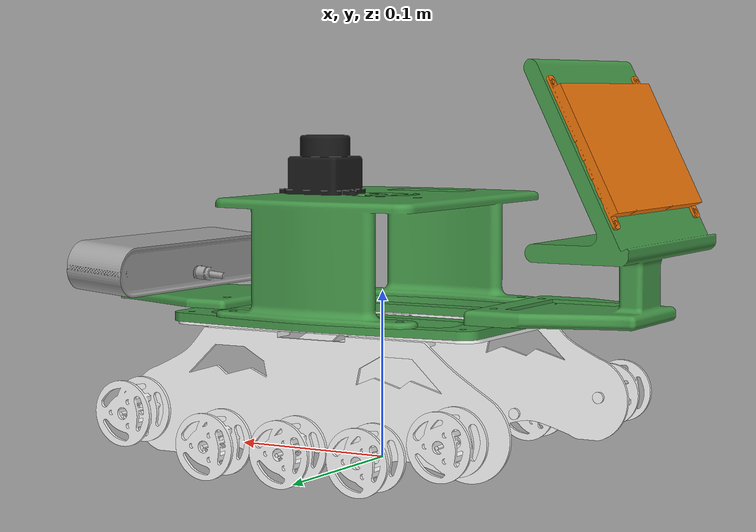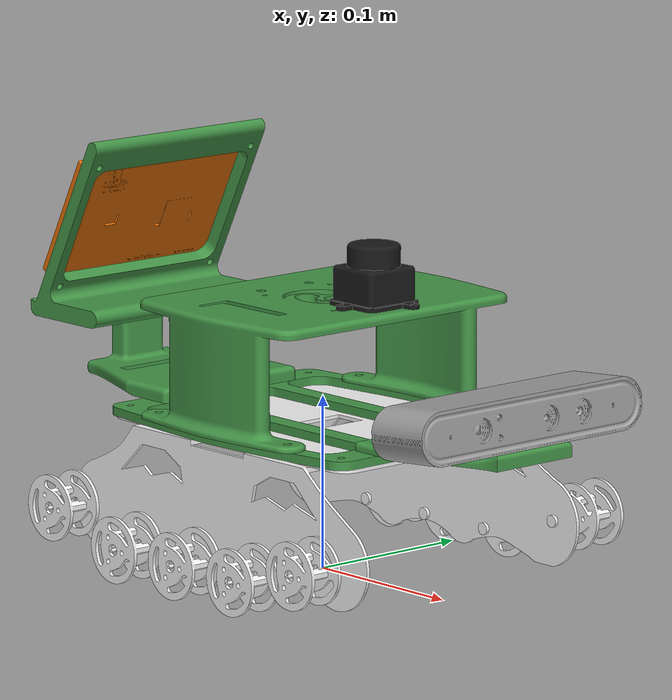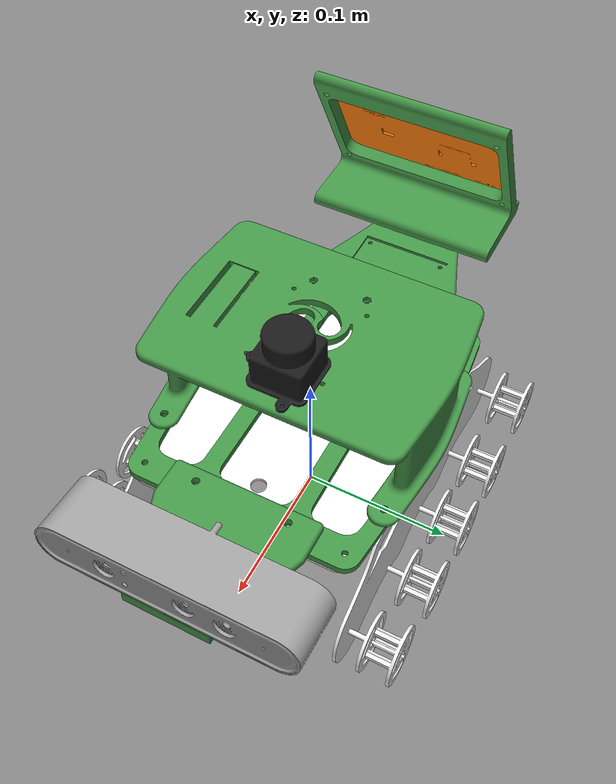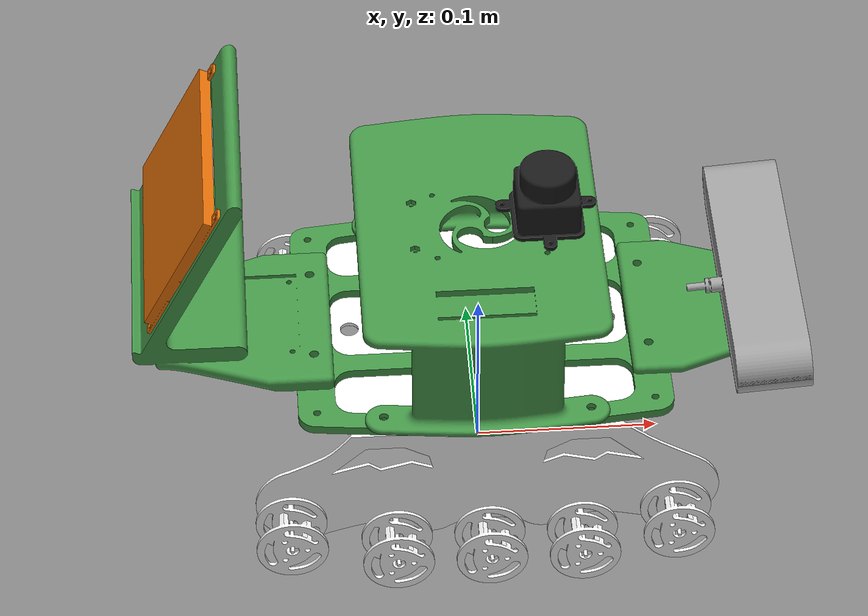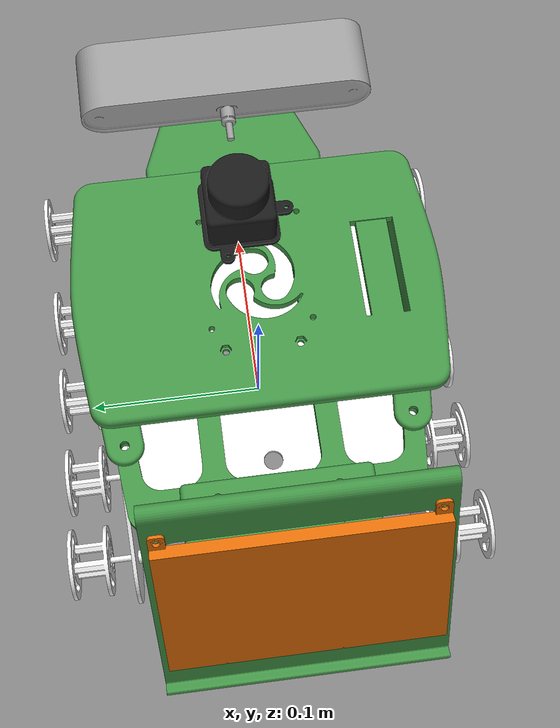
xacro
<?xml version="1.0" ?>
<robot name="robocop" xmlns:xacro="http://www.ros.org/wiki/xacro">

<xacro:include filename="$(find robocop_description)/urdf/materials.xacro" />
<xacro:include filename="$(find robocop_description)/urdf/robocop.trans" />

<xacro:include filename="$(find robocop_description)/gazebo/robocop_materials.gazebo" />
<xacro:include filename="$(find robocop_description)/gazebo/robocop_physics.gazebo" />
<xacro:include filename="$(find robocop_description)/gazebo/robocop_plugins.gazebo" />

<link name="base_link">
  <inertial>
    <origin xyz="-0.00015252878117210557 0.0011495201398277505 0.08695702362938718" rpy="0 0 0"/>
    <mass value="0.5188659614992409"/>
    <inertia ixx="0.001389" iyy="0.002526" izz="0.003913" ixy="0.0" iyz="0.0" ixz="0.0"/>
  </inertial>
  <visual>
    <origin xyz="0 0 0" rpy="0 0 0"/>
    <geometry>
      <mesh filename="package://robocop_description/meshes/base_link.stl" scale="0.001 0.001 0.001"/>
    </geometry>
    <material name="plstico_mate_verde"/>
  </visual>
  <collision>
    <origin xyz="0 0 0" rpy="0 0 0"/>
    <geometry>
      <mesh filename="package://robocop_description/meshes/base_link.stl" scale="0.001 0.001 0.001"/>
    </geometry>
  </collision>
</link>

<link name="soporteCamara_v2_1">
  <inertial>
    <origin xyz="0.033096700645355887 -0.031000479859321393 0.0028238611176841927" rpy="0 0 0"/>
    <mass value="0.30666683235154446"/>
    <inertia ixx="0.000189" iyy="0.000213" izz="0.0004" ixy="-0.0" iyz="-0.0" ixz="-4e-06"/>
  </inertial>
  <visual>
    <origin xyz="-0.089845 -0.03215 -0.089446" rpy="0 0 0"/>
    <geometry>
      <mesh filename="package://robocop_description/meshes/soporteCamara_v2_1.stl" scale="0.001 0.001 0.001"/>
    </geometry>
    <material name="plstico_mate_verde"/>
  </visual>
  <collision>
    <origin xyz="-0.089845 -0.03215 -0.089446" rpy="0 0 0"/>
    <geometry>
      <mesh filename="package://robocop_description/meshes/soporteCamara_v2_1.stl" scale="0.001 0.001 0.001"/>
    </geometry>
  </collision>
</link>

<link name="depthCamera_v1_1">
  <inertial>
    <origin xyz="-0.006184113912021172 -1.3611701263174228e-05 0.014463487875515435" rpy="0 0 0"/>
    <mass value="1.4328263704058224"/>
    <inertia ixx="0.003111" iyy="0.000283" izz="0.00318" ixy="0.0" iyz="0.0" ixz="-5e-06"/>
  </inertial>
  <visual>
    <origin xyz="-0.157196 -0.00115 -0.097274" rpy="0 0 0"/>
    <geometry>
      <mesh filename="package://robocop_description/meshes/depthCamera_v1_1.stl" scale="0.001 0.001 0.001"/>
    </geometry>
    <material name="acero_satinado"/>
  </visual>
  <collision>
    <origin xyz="-0.157196 -0.00115 -0.097274" rpy="0 0 0"/>
    <geometry>
      <mesh filename="package://robocop_description/meshes/depthCamera_v1_1.stl" scale="0.001 0.001 0.001"/>
    </geometry>
  </collision>
</link>

<link name="soporteElectronica_v7_1">
  <inertial>
    <origin xyz="0.0550026777716467 -0.0750539566858314 0.04613612305196782" rpy="0 0 0"/>
    <mass value="1.7280541618979188"/>
    <inertia ixx="0.008802" iyy="0.002669" izz="0.009606" ixy="-0.0" iyz="-2.2e-05" ixz="-0.0"/>
  </inertial>
  <visual>
    <origin xyz="0.055155 -0.07685 -0.089446" rpy="0 0 0"/>
    <geometry>
      <mesh filename="package://robocop_description/meshes/soporteElectronica_v7_1.stl" scale="0.001 0.001 0.001"/>
    </geometry>
    <material name="plstico_mate_verde"/>
  </visual>
  <collision>
    <origin xyz="0.055155 -0.07685 -0.089446" rpy="0 0 0"/>
    <geometry>
      <mesh filename="package://robocop_description/meshes/soporteElectronica_v7_1.stl" scale="0.001 0.001 0.001"/>
    </geometry>
  </collision>
</link>

<link name="basePrincipal_v4_1">
  <inertial>
    <origin xyz="-0.10000015153288912 -4.798601768295652e-07 -0.0009996705328831484" rpy="0 0 0"/>
    <mass value="0.44398234905881495"/>
    <inertia ixx="0.000868" iyy="0.001466" izz="0.002334" ixy="0.0" iyz="0.0" ixz="0.0"/>
  </inertial>
  <visual>
    <origin xyz="-0.099845 -0.00115 -0.084446" rpy="0 0 0"/>
    <geometry>
      <mesh filename="package://robocop_description/meshes/basePrincipal_v4_1.stl" scale="0.001 0.001 0.001"/>
    </geometry>
    <material name="aluminio_pulido"/>
  </visual>
  <collision>
    <origin xyz="-0.099845 -0.00115 -0.084446" rpy="0 0 0"/>
    <geometry>
      <mesh filename="package://robocop_description/meshes/basePrincipal_v4_1.stl" scale="0.001 0.001 0.001"/>
    </geometry>
  </collision>
</link>

<link name="baseRuedas_v3__1__1">
  <inertial>
    <origin xyz="-0.00016167785566641627 0.002915310120291753 -0.03517812668147839" rpy="0 0 0"/>
    <mass value="0.25465013251117774"/>
    <inertia ixx="0.000128" iyy="0.001194" izz="0.001072" ixy="0.0" iyz="9e-06" ixz="4e-06"/>
  </inertial>
  <visual>
    <origin xyz="0.000155 -0.07615 -0.082446" rpy="0 0 0"/>
    <geometry>
      <mesh filename="package://robocop_description/meshes/baseRuedas_v3__1__1.stl" scale="0.001 0.001 0.001"/>
    </geometry>
    <material name="aluminio_pulido"/>
  </visual>
  <collision>
    <origin xyz="0.000155 -0.07615 -0.082446" rpy="0 0 0"/>
    <geometry>
      <mesh filename="package://robocop_description/meshes/baseRuedas_v3__1__1.stl" scale="0.001 0.001 0.001"/>
    </geometry>
  </collision>
</link>

<link name="baseRuedas_v3_1">
  <inertial>
    <origin xyz="0.0001613747898826616 -0.0029162698406539483 -0.03517812668147681" rpy="0 0 0"/>
    <mass value="0.2546501325111777"/>
    <inertia ixx="0.000128" iyy="0.001194" izz="0.001072" ixy="0.0" iyz="-9e-06" ixz="-4e-06"/>
  </inertial>
  <visual>
    <origin xyz="0.000155 0.07385 -0.082446" rpy="0 0 0"/>
    <geometry>
      <mesh filename="package://robocop_description/meshes/baseRuedas_v3_1.stl" scale="0.001 0.001 0.001"/>
    </geometry>
    <material name="aluminio_pulido"/>
  </visual>
  <collision>
    <origin xyz="0.000155 0.07385 -0.082446" rpy="0 0 0"/>
    <geometry>
      <mesh filename="package://robocop_description/meshes/baseRuedas_v3_1.stl" scale="0.001 0.001 0.001"/>
    </geometry>
  </collision>
</link>

<link name="soportePantalla_v11_1">
  <inertial>
    <origin xyz="-0.05482012321579245 -0.031024327711935747 0.0416932220450911" rpy="0 0 0"/>
    <mass value="1.4723320792485377"/>
    <inertia ixx="0.003919" iyy="0.003175" izz="0.002641" ixy="1e-06" iyz="-1e-06" ixz="0.000192"/>
  </inertial>
  <visual>
    <origin xyz="0.090155 -0.03215 -0.089446" rpy="0 0 0"/>
    <geometry>
      <mesh filename="package://robocop_description/meshes/soportePantalla_v11_1.stl" scale="0.001 0.001 0.001"/>
    </geometry>
    <material name="plstico_mate_verde"/>
  </visual>
  <collision>
    <origin xyz="0.090155 -0.03215 -0.089446" rpy="0 0 0"/>
    <geometry>
      <mesh filename="package://robocop_description/meshes/soportePantalla_v11_1.stl" scale="0.001 0.001 0.001"/>
    </geometry>
  </collision>
</link>

<link name="pantallaTouch_v1_1">
  <inertial>
    <origin xyz="0.014227140264907762 -5.948022128042757e-05 0.03533424485444281" rpy="0 0 0"/>
    <mass value="0.4448110745769616"/>
    <inertia ixx="0.000719" iyy="0.000218" izz="0.00059" ixy="-0.0" iyz="-0.0" ixz="-8.6e-05"/>
  </inertial>
  <visual>
    <origin xyz="0.172151 -0.00115 -0.152249" rpy="0 0 0"/>
    <geometry>
      <mesh filename="package://robocop_description/meshes/pantallaTouch_v1_1.stl" scale="0.001 0.001 0.001"/>
    </geometry>
    <material name="opaque2321138"/>
  </visual>
  <collision>
    <origin xyz="0.172151 -0.00115 -0.152249" rpy="0 0 0"/>
    <geometry>
      <mesh filename="package://robocop_description/meshes/pantallaTouch_v1_1.stl" scale="0.001 0.001 0.001"/>
    </geometry>
  </collision>
</link>

<link name="rueda_v2__9__1">
  <inertial>
    <origin xyz="2.906220757936673e-07 0.024841003276909218 9.779888714145368e-08" rpy="0 0 0"/>
    <mass value="0.03535675163245143"/>
    <inertia ixx="6e-06" iyy="5e-06" izz="6e-06" ixy="0.0" iyz="0.0" ixz="-0.0"/>
  </inertial>
  <visual>
    <origin xyz="-0.106217 -0.07915 -0.033913" rpy="0 0 0"/>
    <geometry>
      <mesh filename="package://robocop_description/meshes/rueda_v2__9__1.stl" scale="0.001 0.001 0.001"/>
    </geometry>
    <material name="aluminio_pulido"/>
  </visual>
  <collision>
    <origin xyz="-0.106217 -0.07915 -0.033913" rpy="0 0 0"/>
    <geometry>
      <mesh filename="package://robocop_description/meshes/rueda_v2__9__1.stl" scale="0.001 0.001 0.001"/>
    </geometry>
  </collision>
</link>

<link name="rueda_v2__8__1">
  <inertial>
    <origin xyz="-1.5153294408154494e-07 0.024841003276908996 3.2946710029971293e-07" rpy="0 0 0"/>
    <mass value="0.035356751632451444"/>
    <inertia ixx="6e-06" iyy="5e-06" izz="6e-06" ixy="0.0" iyz="0.0" ixz="-0.0"/>
  </inertial>
  <visual>
    <origin xyz="-0.049845 -0.07915 -0.019446" rpy="0 0 0"/>
    <geometry>
      <mesh filename="package://robocop_description/meshes/rueda_v2__8__1.stl" scale="0.001 0.001 0.001"/>
    </geometry>
    <material name="aluminio_pulido"/>
  </visual>
  <collision>
    <origin xyz="-0.049845 -0.07915 -0.019446" rpy="0 0 0"/>
    <geometry>
      <mesh filename="package://robocop_description/meshes/rueda_v2__8__1.stl" scale="0.001 0.001 0.001"/>
    </geometry>
  </collision>
</link>

<link name="rueda_v2__7__1">
  <inertial>
    <origin xyz="-1.51532944086722e-07 0.024841003276907747 3.2946710064665763e-07" rpy="0 0 0"/>
    <mass value="0.03535675163245133"/>
    <inertia ixx="6e-06" iyy="5e-06" izz="6e-06" ixy="0.0" iyz="0.0" ixz="-0.0"/>
  </inertial>
  <visual>
    <origin xyz="0.000155 -0.07915 -0.019446" rpy="0 0 0"/>
    <geometry>
      <mesh filename="package://robocop_description/meshes/rueda_v2__7__1.stl" scale="0.001 0.001 0.001"/>
    </geometry>
    <material name="aluminio_pulido"/>
  </visual>
  <collision>
    <origin xyz="0.000155 -0.07915 -0.019446" rpy="0 0 0"/>
    <geometry>
      <mesh filename="package://robocop_description/meshes/rueda_v2__7__1.stl" scale="0.001 0.001 0.001"/>
    </geometry>
  </collision>
</link>

<link name="rueda_v2__6__1">
  <inertial>
    <origin xyz="-1.5153294388031702e-07 0.024841003276907095 3.294671006501271e-07" rpy="0 0 0"/>
    <mass value="0.035356751632451625"/>
    <inertia ixx="6e-06" iyy="5e-06" izz="6e-06" ixy="0.0" iyz="0.0" ixz="-0.0"/>
  </inertial>
  <visual>
    <origin xyz="0.050155 -0.07915 -0.019446" rpy="0 0 0"/>
    <geometry>
      <mesh filename="package://robocop_description/meshes/rueda_v2__6__1.stl" scale="0.001 0.001 0.001"/>
    </geometry>
    <material name="aluminio_pulido"/>
  </visual>
  <collision>
    <origin xyz="0.050155 -0.07915 -0.019446" rpy="0 0 0"/>
    <geometry>
      <mesh filename="package://robocop_description/meshes/rueda_v2__6__1.stl" scale="0.001 0.001 0.001"/>
    </geometry>
  </collision>
</link>

<link name="rueda_v2__5__1">
  <inertial>
    <origin xyz="-1.515329439011337e-07 0.02484100327690518 3.2946710078890495e-07" rpy="0 0 0"/>
    <mass value="0.035356751632451444"/>
    <inertia ixx="6e-06" iyy="5e-06" izz="6e-06" ixy="0.0" iyz="0.0" ixz="-0.0"/>
  </inertial>
  <visual>
    <origin xyz="0.100155 -0.07915 -0.032446" rpy="0 0 0"/>
    <geometry>
      <mesh filename="package://robocop_description/meshes/rueda_v2__5__1.stl" scale="0.001 0.001 0.001"/>
    </geometry>
    <material name="aluminio_pulido"/>
  </visual>
  <collision>
    <origin xyz="0.100155 -0.07915 -0.032446" rpy="0 0 0"/>
    <geometry>
      <mesh filename="package://robocop_description/meshes/rueda_v2__5__1.stl" scale="0.001 0.001 0.001"/>
    </geometry>
  </collision>
</link>

<link name="rueda_v2__4__1">
  <inertial>
    <origin xyz="4.0631203772345525e-07 -0.024841962997266487 9.7798914786007e-08" rpy="0 0 0"/>
    <mass value="0.0353567516324516"/>
    <inertia ixx="6e-06" iyy="5e-06" izz="6e-06" ixy="-0.0" iyz="-0.0" ixz="-0.0"/>
  </inertial>
  <visual>
    <origin xyz="0.106528 0.07685 -0.033913" rpy="0 0 0"/>
    <geometry>
      <mesh filename="package://robocop_description/meshes/rueda_v2__4__1.stl" scale="0.001 0.001 0.001"/>
    </geometry>
    <material name="aluminio_pulido"/>
  </visual>
  <collision>
    <origin xyz="0.106528 0.07685 -0.033913" rpy="0 0 0"/>
    <geometry>
      <mesh filename="package://robocop_description/meshes/rueda_v2__4__1.stl" scale="0.001 0.001 0.001"/>
    </geometry>
  </collision>
</link>

<link name="rueda_v2__3__1">
  <inertial>
    <origin xyz="-1.5153294249253824e-07 -0.024841962997268097 3.2946712819406643e-07" rpy="0 0 0"/>
    <mass value="0.03535675163245149"/>
    <inertia ixx="6e-06" iyy="5e-06" izz="6e-06" ixy="-0.0" iyz="-0.0" ixz="-0.0"/>
  </inertial>
  <visual>
    <origin xyz="0.050155 0.07685 -0.019446" rpy="0 0 0"/>
    <geometry>
      <mesh filename="package://robocop_description/meshes/rueda_v2__3__1.stl" scale="0.001 0.001 0.001"/>
    </geometry>
    <material name="aluminio_pulido"/>
  </visual>
  <collision>
    <origin xyz="0.050155 0.07685 -0.019446" rpy="0 0 0"/>
    <geometry>
      <mesh filename="package://robocop_description/meshes/rueda_v2__3__1.stl" scale="0.001 0.001 0.001"/>
    </geometry>
  </collision>
</link>

<link name="rueda_v2__2__1">
  <inertial>
    <origin xyz="-1.515329426141044e-07 -0.024841962997269235 3.2946712833631375e-07" rpy="0 0 0"/>
    <mass value="0.03535675163245141"/>
    <inertia ixx="6e-06" iyy="5e-06" izz="6e-06" ixy="-0.0" iyz="-0.0" ixz="-0.0"/>
  </inertial>
  <visual>
    <origin xyz="0.000155 0.07685 -0.019446" rpy="0 0 0"/>
    <geometry>
      <mesh filename="package://robocop_description/meshes/rueda_v2__2__1.stl" scale="0.001 0.001 0.001"/>
    </geometry>
    <material name="aluminio_pulido"/>
  </visual>
  <collision>
    <origin xyz="0.000155 0.07685 -0.019446" rpy="0 0 0"/>
    <geometry>
      <mesh filename="package://robocop_description/meshes/rueda_v2__2__1.stl" scale="0.001 0.001 0.001"/>
    </geometry>
  </collision>
</link>

<link name="rueda_v2__1__1">
  <inertial>
    <origin xyz="-1.5153294268682727e-07 -0.024841962997270428 3.2946712844039716e-07" rpy="0 0 0"/>
    <mass value="0.03535675163245155"/>
    <inertia ixx="6e-06" iyy="5e-06" izz="6e-06" ixy="-0.0" iyz="-0.0" ixz="-0.0"/>
  </inertial>
  <visual>
    <origin xyz="-0.049845 0.07685 -0.019446" rpy="0 0 0"/>
    <geometry>
      <mesh filename="package://robocop_description/meshes/rueda_v2__1__1.stl" scale="0.001 0.001 0.001"/>
    </geometry>
    <material name="aluminio_pulido"/>
  </visual>
  <collision>
    <origin xyz="-0.049845 0.07685 -0.019446" rpy="0 0 0"/>
    <geometry>
      <mesh filename="package://robocop_description/meshes/rueda_v2__1__1.stl" scale="0.001 0.001 0.001"/>
    </geometry>
  </collision>
</link>

<link name="rueda_v2_1">
  <inertial>
    <origin xyz="-1.5153294256886607e-07 -0.024841962997271372 3.2946712832937486e-07" rpy="0 0 0"/>
    <mass value="0.035356751632451416"/>
    <inertia ixx="6e-06" iyy="5e-06" izz="6e-06" ixy="-0.0" iyz="-0.0" ixz="-0.0"/>
  </inertial>
  <visual>
    <origin xyz="-0.099845 0.07685 -0.032446" rpy="0 0 0"/>
    <geometry>
      <mesh filename="package://robocop_description/meshes/rueda_v2_1.stl" scale="0.001 0.001 0.001"/>
    </geometry>
    <material name="aluminio_pulido"/>
  </visual>
  <collision>
    <origin xyz="-0.099845 0.07685 -0.032446" rpy="0 0 0"/>
    <geometry>
      <mesh filename="package://robocop_description/meshes/rueda_v2_1.stl" scale="0.001 0.001 0.001"/>
    </geometry>
  </collision>
</link>

<link name="Lidar_LD19_v1_1">
  <inertial>
    <origin xyz="-0.025000151532890494 0.004119472313699195 0.01512468619072252" rpy="0 0 0"/>
    <mass value="0.2766394104341817"/>
    <inertia ixx="5.1e-05" iyy="5.1e-05" izz="4.9e-05" ixy="0.0" iyz="-0.0" ixz="0.0"/>
  </inertial>
  <visual>
    <origin xyz="-0.061845 -0.00115 -0.157446" rpy="0 0 0"/>
    <geometry>
      <mesh filename="package://robocop_description/meshes/Lidar_LD19_v1_1.stl" scale="0.001 0.001 0.001"/>
    </geometry>
    <material name="plstico_brillante_negro"/>
  </visual>
  <collision>
    <origin xyz="-0.061845 -0.00115 -0.157446" rpy="0 0 0"/>
    <geometry>
      <mesh filename="package://robocop_description/meshes/Lidar_LD19_v1_1.stl" scale="0.001 0.001 0.001"/>
    </geometry>
  </collision>
</link>

<joint name="Rigida1" type="fixed">
  <origin xyz="0.089845 0.03215 0.089446" rpy="0 0 0"/>
  <parent link="base_link"/>
  <child link="soporteCamara_v2_1"/>
</joint>

<joint name="Rigida2" type="fixed">
  <origin xyz="0.067351 -0.031 0.007828" rpy="0 0 0"/>
  <parent link="soporteCamara_v2_1"/>
  <child link="depthCamera_v1_1"/>
</joint>

<joint name="Rigida3" type="fixed">
  <origin xyz="-0.055155 0.07685 0.089446" rpy="0 0 0"/>
  <parent link="base_link"/>
  <child link="soporteElectronica_v7_1"/>
</joint>

<joint name="Rigida5" type="fixed">
  <origin xyz="0.099845 0.00115 0.084446" rpy="0 0 0"/>
  <parent link="base_link"/>
  <child link="basePrincipal_v4_1"/>
</joint>

<joint name="Rigida6" type="fixed">
  <origin xyz="-0.1 0.075 -0.002" rpy="0 0 0"/>
  <parent link="basePrincipal_v4_1"/>
  <child link="baseRuedas_v3__1__1"/>
</joint>

<joint name="Rigida7" type="fixed">
  <origin xyz="-0.1 -0.075 -0.002" rpy="0 0 0"/>
  <parent link="basePrincipal_v4_1"/>
  <child link="baseRuedas_v3_1"/>
</joint>

<joint name="Rigida8" type="fixed">
  <origin xyz="-0.090155 0.03215 0.089446" rpy="0 0 0"/>
  <parent link="base_link"/>
  <child link="soportePantalla_v11_1"/>
</joint>

<joint name="Rigida9" type="fixed">
  <origin xyz="-0.081996 -0.031 0.062803" rpy="0 0 0"/>
  <parent link="soportePantalla_v11_1"/>
  <child link="pantallaTouch_v1_1"/>
</joint>

<joint name="ruedaIzquierda1" type="continuous">
  <origin xyz="0.106372 0.003 -0.048533" rpy="0 0 0"/>
  <parent link="baseRuedas_v3__1__1"/>
  <child link="rueda_v2__9__1"/>
  <axis xyz="-0.0 1.0 0.0"/>
</joint>

<joint name="ruedaIzquierda2" type="continuous">
  <origin xyz="0.05 0.003 -0.063" rpy="0 0 0"/>
  <parent link="baseRuedas_v3__1__1"/>
  <child link="rueda_v2__8__1"/>
  <axis xyz="-0.0 1.0 0.0"/>
</joint>

<joint name="ruedaIzquierda3" type="continuous">
  <origin xyz="0.0 0.003 -0.063" rpy="0 0 0"/>
  <parent link="baseRuedas_v3__1__1"/>
  <child link="rueda_v2__7__1"/>
  <axis xyz="-0.0 1.0 0.0"/>
</joint>

<joint name="ruedaIzquierda4" type="continuous">
  <origin xyz="-0.05 0.003 -0.063" rpy="0 0 0"/>
  <parent link="baseRuedas_v3__1__1"/>
  <child link="rueda_v2__6__1"/>
  <axis xyz="-0.0 1.0 0.0"/>
</joint>

<joint name="ruedaIzquierda5" type="continuous">
  <origin xyz="-0.1 0.003 -0.05" rpy="0 0 0"/>
  <parent link="baseRuedas_v3__1__1"/>
  <child link="rueda_v2__5__1"/>
  <axis xyz="-0.0 1.0 0.0"/>
</joint>

<joint name="ruedaDerecha5" type="continuous">
  <origin xyz="-0.106373 -0.003 -0.048533" rpy="0 0 0"/>
  <parent link="baseRuedas_v3_1"/>
  <child link="rueda_v2__4__1"/>
  <axis xyz="-0.0 -1.0 0.0"/>
</joint>

<joint name="ruedaDerecha4" type="continuous">
  <origin xyz="-0.05 -0.003 -0.063" rpy="0 0 0"/>
  <parent link="baseRuedas_v3_1"/>
  <child link="rueda_v2__3__1"/>
  <axis xyz="-0.0 -1.0 0.0"/>
</joint>

<joint name="ruedaDerecha3" type="continuous">
  <origin xyz="0.0 -0.003 -0.063" rpy="0 0 0"/>
  <parent link="baseRuedas_v3_1"/>
  <child link="rueda_v2__2__1"/>
  <axis xyz="-0.0 -1.0 0.0"/>
</joint>

<joint name="ruedaDerecha2" type="continuous">
  <origin xyz="0.05 -0.003 -0.063" rpy="0 0 0"/>
  <parent link="baseRuedas_v3_1"/>
  <child link="rueda_v2__1__1"/>
  <axis xyz="-0.0 -1.0 0.0"/>
</joint>

<joint name="ruedaDerecha1" type="continuous">
  <origin xyz="0.1 -0.003 -0.05" rpy="0 0 0"/>
  <parent link="baseRuedas_v3_1"/>
  <child link="rueda_v2_1"/>
  <axis xyz="-0.0 -1.0 0.0"/>
</joint>

<joint name="R�gida94" type="fixed">
  <origin xyz="0.117 -0.0757 0.068" rpy="0 0 0"/>
  <parent link="soporteElectronica_v7_1"/>
  <child link="Lidar_LD19_v1_1"/>
</joint>

</robot>

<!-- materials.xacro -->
<robot name="robocop" xmlns:xacro="http://www.ros.org/wiki/xacro" >

<material name="silver_default">
  <color rgba="0.700 0.700 0.700 1.000"/>
</material>
<material name="plstico_mate_verde">
  <color rgba="0.26666666666666666 0.5882352941176471 0.2823529411764706 1.0"/>
</material>
<material name="acero_satinado">
  <color rgba="0.6274509803921569 0.6274509803921569 0.6274509803921569 1.0"/>
</material>
<material name="aluminio_pulido">
  <color rgba="0.9607843137254902 0.9607843137254902 0.9647058823529412 1.0"/>
</material>
<material name="opaque2321138">
  <color rgba="0.9098039215686274 0.44313725490196076 0.03137254901960784 1.0"/>
</material>
<material name="plstico_brillante_negro">
  <color rgba="0.09803921568627451 0.09803921568627451 0.09803921568627451 1.0"/>
</material>

</robot>

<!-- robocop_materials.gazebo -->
<robot name="robocop" xmlns:xacro="http://www.ros.org/wiki/xacro" >

<xacro:property name="greenColor" value="Gazebo/Green" />
<xacro:property name="blackColor" value="Gazebo/Black" />
<xacro:property name="darkgrayColor" value="Gazebo/DarkGrey" />
<xacro:property name="grayColor" value="Gazebo/Grey" />
<xacro:property name="silverColor" value="Gazebo/Silver" />
<xacro:property name="yellowColor" value="Gazebo/YellowGlow" />

<gazebo>
  <plugin name="control" filename="libgazebo_ros_control.so"/>
</gazebo>
<gazebo reference="base_link">
  <material>${greenColor}</material>
</gazebo>

<gazebo reference="soporteCamara_v2_1">
  <material>${greenColor}</material>
</gazebo>

<gazebo reference="depthCamera_v1_1">
  <material>${greenColor}</material>
</gazebo>

<gazebo reference="soporteElectronica_v7_1">
  <material>${greenColor}</material>
</gazebo>

<gazebo reference="basePrincipal_v4_1">
  <material>${greenColor}</material>
</gazebo>

<gazebo reference="baseRuedas_v3__1__1">
  <material>${greenColor}</material>
</gazebo>

<gazebo reference="baseRuedas_v3_1">
  <material>${greenColor}</material>
</gazebo>

<gazebo reference="soportePantalla_v11_1">
  <material>${greenColor}</material>
</gazebo>

<gazebo reference="pantallaTouch_v1_1">
  <material>${greenColor}</material>
</gazebo>

<gazebo reference="rueda_v2__9__1">
  <material>${greenColor}</material>
</gazebo>

<gazebo reference="rueda_v2__8__1">
  <material>${greenColor}</material>
</gazebo>

<gazebo reference="rueda_v2__7__1">
  <material>${greenColor}</material>
</gazebo>

<gazebo reference="rueda_v2__6__1">
  <material>${greenColor}</material>
</gazebo>

<gazebo reference="rueda_v2__5__1">
  <material>${greenColor}</material>
</gazebo>

<gazebo reference="rueda_v2__4__1">
  <material>${greenColor}</material>
</gazebo>

<gazebo reference="rueda_v2__3__1">
  <material>${greenColor}</material>
</gazebo>

<gazebo reference="rueda_v2__2__1">
  <material>${greenColor}</material>
</gazebo>

<gazebo reference="rueda_v2__1__1">
  <material>${greenColor}</material>
</gazebo>

<gazebo reference="rueda_v2_1">
  <material>${greenColor}</material>
</gazebo>

<gazebo reference="Lidar_LD19_v1_1">
  <material>${greenColor}</material>
</gazebo>

</robot>
